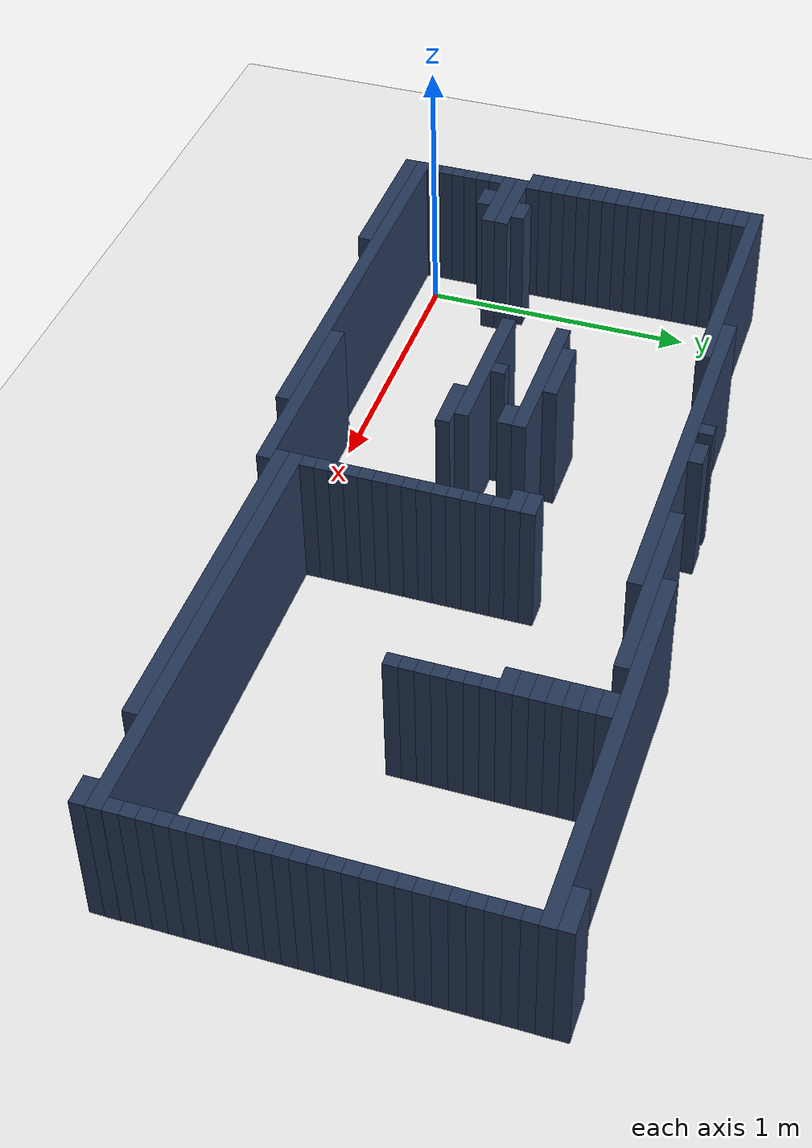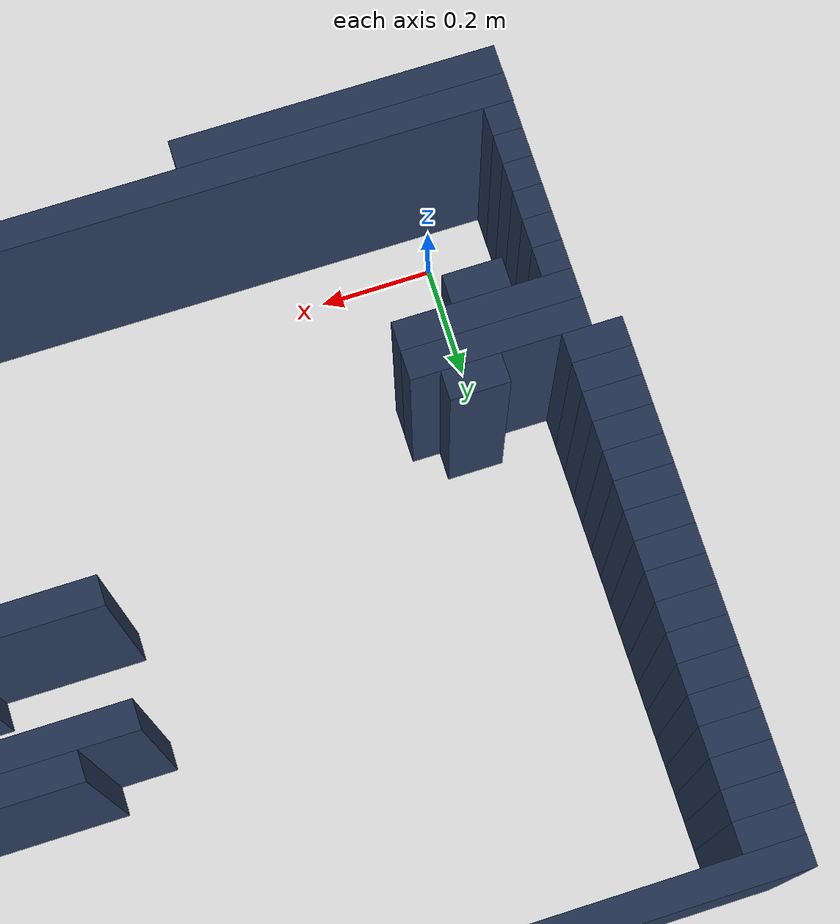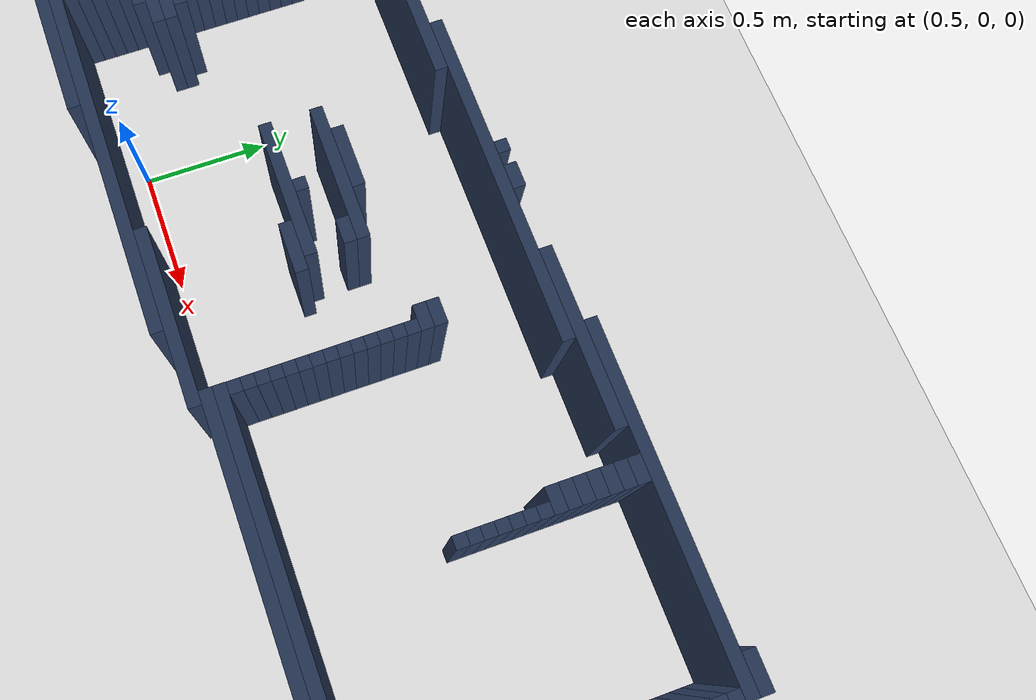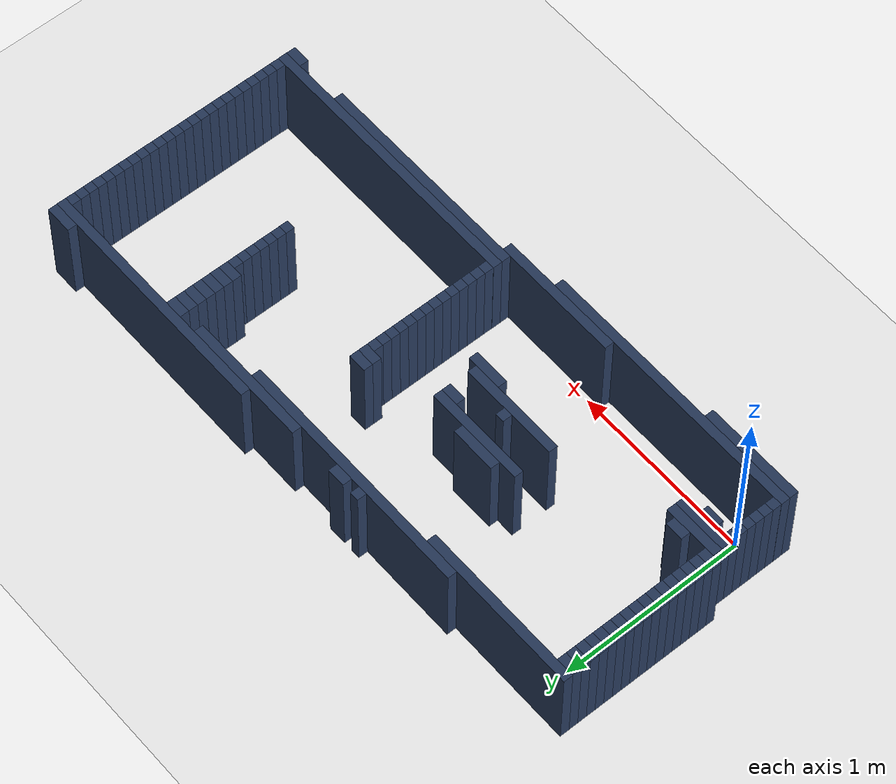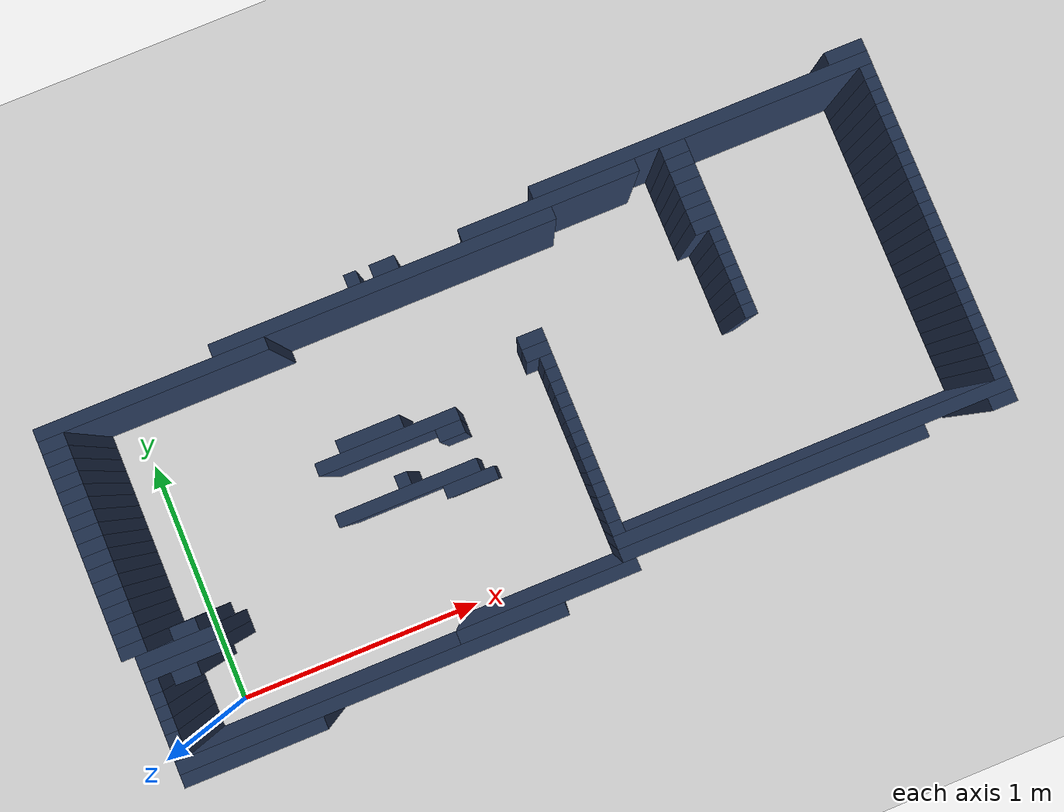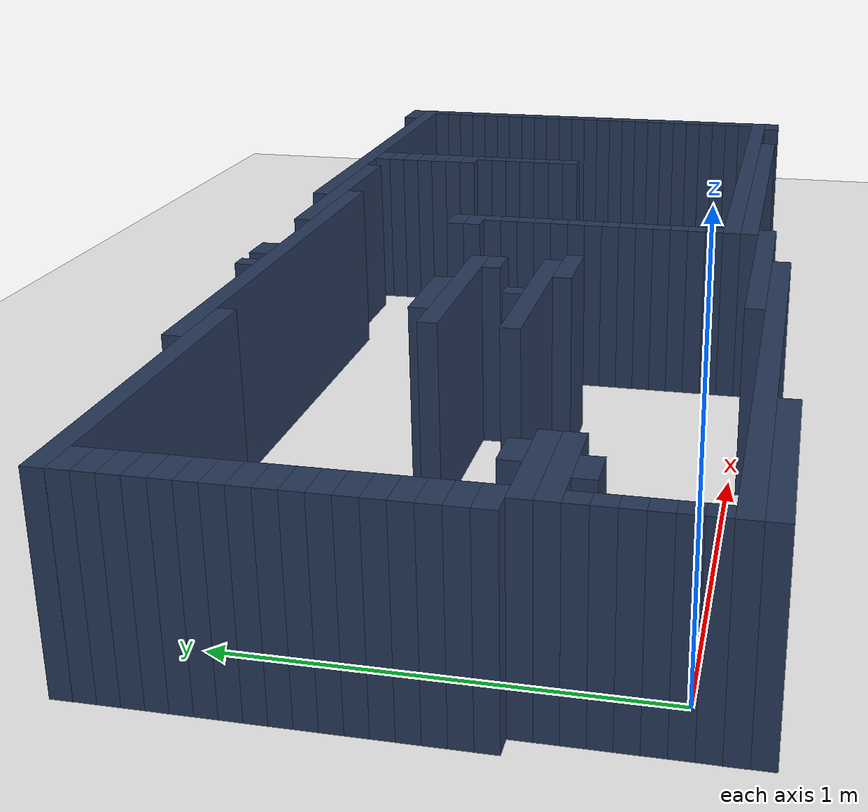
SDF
<?xml version="1.0"?>
<sdf version="1.8">
  <world name="good_map">
    <!-- pinky_gz_sim/worlds/good_map.world 복사본(inwoong/map_to_world.py가 maps/good3.yaml로 만든 실제 방 벽). 물리 step만 1ms -> 4ms: /clock이 초당 1000번 -> 250번으로 줄어 시계를 받는 모든 노드가 가벼워진다. -->
    <plugin filename="gz-sim-physics-system" name="gz::sim::systems::Physics"/>
    <plugin filename="gz-sim-user-commands-system" name="gz::sim::systems::UserCommands"/>
    <plugin filename="gz-sim-scene-broadcaster-system" name="gz::sim::systems::SceneBroadcaster"/>
    <plugin filename="gz-sim-sensors-system" name="gz::sim::systems::Sensors">
      <render_engine>ogre2</render_engine>
    </plugin>
    <plugin filename="gz-sim-imu-system" name="gz::sim::systems::Imu"/>

    <light type="directional" name="sun">
      <cast_shadows>false</cast_shadows>
      <pose>0 0 5 0 0 0</pose>
      <diffuse>1 1 1 1</diffuse>
      <specular>0.3 0.3 0.3 1</specular>
      <direction>-0.3 0.3 -0.9</direction>
    </light>

    <model name="ground_plane">
      <static>true</static>
      <link name="link">
        <collision name="collision">
          <geometry><plane><normal>0 0 1</normal><size>100 100</size></plane></geometry>
        </collision>
        <visual name="visual">
          <geometry><plane><normal>0 0 1</normal><size>100 100</size></plane></geometry>
          <material>
            <ambient>0.95 0.95 0.95 1</ambient>
            <diffuse>0.95 0.95 0.95 1</diffuse>
          </material>
        </visual>
      </link>
    </model>

    <model name="map_walls">
      <static>true</static>
      <link name="wall_0">
        <pose>3.0580 1.4040 0.2500 0 0 0</pose>
        <collision name="collision">
          <geometry>
            <box><size>0.1501 0.0500 0.5000</size></box>
          </geometry>
        </collision>
        <visual name="visual">
          <geometry>
            <box><size>0.1501 0.0500 0.5000</size></box>
          </geometry>
          <material>
            <ambient>0.15 0.22 0.35 1</ambient>
            <diffuse>0.15 0.22 0.35 1</diffuse>
          </material>
        </visual>
      </link>
      <link name="wall_1">
        <pose>2.4580 1.3540 0.2500 0 0 0</pose>
        <collision name="collision">
          <geometry>
            <box><size>1.3513 0.0500 0.5000</size></box>
          </geometry>
        </collision>
        <visual name="visual">
          <geometry>
            <box><size>1.3513 0.0500 0.5000</size></box>
          </geometry>
          <material>
            <ambient>0.15 0.22 0.35 1</ambient>
            <diffuse>0.15 0.22 0.35 1</diffuse>
          </material>
        </visual>
      </link>
      <link name="wall_2">
        <pose>1.0580 1.3040 0.2500 0 0 0</pose>
        <collision name="collision">
          <geometry>
            <box><size>0.0500 0.0500 0.5000</size></box>
          </geometry>
        </collision>
        <visual name="visual">
          <geometry>
            <box><size>0.0500 0.0500 0.5000</size></box>
          </geometry>
          <material>
            <ambient>0.15 0.22 0.35 1</ambient>
            <diffuse>0.15 0.22 0.35 1</diffuse>
          </material>
        </visual>
      </link>
      <link name="wall_3">
        <pose>1.1830 1.3040 0.2500 0 0 0</pose>
        <collision name="collision">
          <geometry>
            <box><size>0.1001 0.0500 0.5000</size></box>
          </geometry>
        </collision>
        <visual name="visual">
          <geometry>
            <box><size>0.1001 0.0500 0.5000</size></box>
          </geometry>
          <material>
            <ambient>0.15 0.22 0.35 1</ambient>
            <diffuse>0.15 0.22 0.35 1</diffuse>
          </material>
        </visual>
      </link>
      <link name="wall_4">
        <pose>1.8330 1.3040 0.2500 0 0 0</pose>
        <collision name="collision">
          <geometry>
            <box><size>0.7007 0.0500 0.5000</size></box>
          </geometry>
        </collision>
        <visual name="visual">
          <geometry>
            <box><size>0.7007 0.0500 0.5000</size></box>
          </geometry>
          <material>
            <ambient>0.15 0.22 0.35 1</ambient>
            <diffuse>0.15 0.22 0.35 1</diffuse>
          </material>
        </visual>
      </link>
      <link name="wall_5">
        <pose>2.3330 1.3040 0.2500 0 0 0</pose>
        <collision name="collision">
          <geometry>
            <box><size>0.1001 0.0500 0.5000</size></box>
          </geometry>
        </collision>
        <visual name="visual">
          <geometry>
            <box><size>0.1001 0.0500 0.5000</size></box>
          </geometry>
          <material>
            <ambient>0.15 0.22 0.35 1</ambient>
            <diffuse>0.15 0.22 0.35 1</diffuse>
          </material>
        </visual>
      </link>
      <link name="wall_6">
        <pose>3.1080 1.3040 0.2500 0 0 0</pose>
        <collision name="collision">
          <geometry>
            <box><size>0.0500 0.0500 0.5000</size></box>
          </geometry>
        </collision>
        <visual name="visual">
          <geometry>
            <box><size>0.0500 0.0500 0.5000</size></box>
          </geometry>
          <material>
            <ambient>0.15 0.22 0.35 1</ambient>
            <diffuse>0.15 0.22 0.35 1</diffuse>
          </material>
        </visual>
      </link>
      <link name="wall_7">
        <pose>1.1580 1.2540 0.2500 0 0 0</pose>
        <collision name="collision">
          <geometry>
            <box><size>1.3513 0.0500 0.5000</size></box>
          </geometry>
        </collision>
        <visual name="visual">
          <geometry>
            <box><size>1.3513 0.0500 0.5000</size></box>
          </geometry>
          <material>
            <ambient>0.15 0.22 0.35 1</ambient>
            <diffuse>0.15 0.22 0.35 1</diffuse>
          </material>
        </visual>
      </link>
      <link name="wall_8">
        <pose>2.3330 1.2540 0.2500 0 0 0</pose>
        <collision name="collision">
          <geometry>
            <box><size>0.1001 0.0500 0.5000</size></box>
          </geometry>
        </collision>
        <visual name="visual">
          <geometry>
            <box><size>0.1001 0.0500 0.5000</size></box>
          </geometry>
          <material>
            <ambient>0.15 0.22 0.35 1</ambient>
            <diffuse>0.15 0.22 0.35 1</diffuse>
          </material>
        </visual>
      </link>
      <link name="wall_9">
        <pose>3.1080 1.2540 0.2500 0 0 0</pose>
        <collision name="collision">
          <geometry>
            <box><size>0.0500 0.0500 0.5000</size></box>
          </geometry>
        </collision>
        <visual name="visual">
          <geometry>
            <box><size>0.0500 0.0500 0.5000</size></box>
          </geometry>
          <material>
            <ambient>0.15 0.22 0.35 1</ambient>
            <diffuse>0.15 0.22 0.35 1</diffuse>
          </material>
        </visual>
      </link>
      <link name="wall_10">
        <pose>0.2330 1.2040 0.2500 0 0 0</pose>
        <collision name="collision">
          <geometry>
            <box><size>0.9009 0.0500 0.5000</size></box>
          </geometry>
        </collision>
        <visual name="visual">
          <geometry>
            <box><size>0.9009 0.0500 0.5000</size></box>
          </geometry>
          <material>
            <ambient>0.15 0.22 0.35 1</ambient>
            <diffuse>0.15 0.22 0.35 1</diffuse>
          </material>
        </visual>
      </link>
      <link name="wall_11">
        <pose>2.3330 1.2040 0.2500 0 0 0</pose>
        <collision name="collision">
          <geometry>
            <box><size>0.1001 0.0500 0.5000</size></box>
          </geometry>
        </collision>
        <visual name="visual">
          <geometry>
            <box><size>0.1001 0.0500 0.5000</size></box>
          </geometry>
          <material>
            <ambient>0.15 0.22 0.35 1</ambient>
            <diffuse>0.15 0.22 0.35 1</diffuse>
          </material>
        </visual>
      </link>
      <link name="wall_12">
        <pose>3.1080 1.2040 0.2500 0 0 0</pose>
        <collision name="collision">
          <geometry>
            <box><size>0.0500 0.0500 0.5000</size></box>
          </geometry>
        </collision>
        <visual name="visual">
          <geometry>
            <box><size>0.0500 0.0500 0.5000</size></box>
          </geometry>
          <material>
            <ambient>0.15 0.22 0.35 1</ambient>
            <diffuse>0.15 0.22 0.35 1</diffuse>
          </material>
        </visual>
      </link>
      <link name="wall_13">
        <pose>-0.1670 1.1540 0.2500 0 0 0</pose>
        <collision name="collision">
          <geometry>
            <box><size>0.1001 0.0500 0.5000</size></box>
          </geometry>
        </collision>
        <visual name="visual">
          <geometry>
            <box><size>0.1001 0.0500 0.5000</size></box>
          </geometry>
          <material>
            <ambient>0.15 0.22 0.35 1</ambient>
            <diffuse>0.15 0.22 0.35 1</diffuse>
          </material>
        </visual>
      </link>
      <link name="wall_14">
        <pose>2.3330 1.1540 0.2500 0 0 0</pose>
        <collision name="collision">
          <geometry>
            <box><size>0.1001 0.0500 0.5000</size></box>
          </geometry>
        </collision>
        <visual name="visual">
          <geometry>
            <box><size>0.1001 0.0500 0.5000</size></box>
          </geometry>
          <material>
            <ambient>0.15 0.22 0.35 1</ambient>
            <diffuse>0.15 0.22 0.35 1</diffuse>
          </material>
        </visual>
      </link>
      <link name="wall_15">
        <pose>3.1080 1.1540 0.2500 0 0 0</pose>
        <collision name="collision">
          <geometry>
            <box><size>0.0500 0.0500 0.5000</size></box>
          </geometry>
        </collision>
        <visual name="visual">
          <geometry>
            <box><size>0.0500 0.0500 0.5000</size></box>
          </geometry>
          <material>
            <ambient>0.15 0.22 0.35 1</ambient>
            <diffuse>0.15 0.22 0.35 1</diffuse>
          </material>
        </visual>
      </link>
      <link name="wall_16">
        <pose>-0.1670 1.1040 0.2500 0 0 0</pose>
        <collision name="collision">
          <geometry>
            <box><size>0.1001 0.0500 0.5000</size></box>
          </geometry>
        </collision>
        <visual name="visual">
          <geometry>
            <box><size>0.1001 0.0500 0.5000</size></box>
          </geometry>
          <material>
            <ambient>0.15 0.22 0.35 1</ambient>
            <diffuse>0.15 0.22 0.35 1</diffuse>
          </material>
        </visual>
      </link>
      <link name="wall_17">
        <pose>2.3330 1.1040 0.2500 0 0 0</pose>
        <collision name="collision">
          <geometry>
            <box><size>0.1001 0.0500 0.5000</size></box>
          </geometry>
        </collision>
        <visual name="visual">
          <geometry>
            <box><size>0.1001 0.0500 0.5000</size></box>
          </geometry>
          <material>
            <ambient>0.15 0.22 0.35 1</ambient>
            <diffuse>0.15 0.22 0.35 1</diffuse>
          </material>
        </visual>
      </link>
      <link name="wall_18">
        <pose>3.1080 1.1040 0.2500 0 0 0</pose>
        <collision name="collision">
          <geometry>
            <box><size>0.0500 0.0500 0.5000</size></box>
          </geometry>
        </collision>
        <visual name="visual">
          <geometry>
            <box><size>0.0500 0.0500 0.5000</size></box>
          </geometry>
          <material>
            <ambient>0.15 0.22 0.35 1</ambient>
            <diffuse>0.15 0.22 0.35 1</diffuse>
          </material>
        </visual>
      </link>
      <link name="wall_19">
        <pose>-0.1670 1.0540 0.2500 0 0 0</pose>
        <collision name="collision">
          <geometry>
            <box><size>0.1001 0.0500 0.5000</size></box>
          </geometry>
        </collision>
        <visual name="visual">
          <geometry>
            <box><size>0.1001 0.0500 0.5000</size></box>
          </geometry>
          <material>
            <ambient>0.15 0.22 0.35 1</ambient>
            <diffuse>0.15 0.22 0.35 1</diffuse>
          </material>
        </visual>
      </link>
      <link name="wall_20">
        <pose>2.3330 1.0540 0.2500 0 0 0</pose>
        <collision name="collision">
          <geometry>
            <box><size>0.1001 0.0500 0.5000</size></box>
          </geometry>
        </collision>
        <visual name="visual">
          <geometry>
            <box><size>0.1001 0.0500 0.5000</size></box>
          </geometry>
          <material>
            <ambient>0.15 0.22 0.35 1</ambient>
            <diffuse>0.15 0.22 0.35 1</diffuse>
          </material>
        </visual>
      </link>
      <link name="wall_21">
        <pose>3.1080 1.0540 0.2500 0 0 0</pose>
        <collision name="collision">
          <geometry>
            <box><size>0.0500 0.0500 0.5000</size></box>
          </geometry>
        </collision>
        <visual name="visual">
          <geometry>
            <box><size>0.0500 0.0500 0.5000</size></box>
          </geometry>
          <material>
            <ambient>0.15 0.22 0.35 1</ambient>
            <diffuse>0.15 0.22 0.35 1</diffuse>
          </material>
        </visual>
      </link>
      <link name="wall_22">
        <pose>-0.1670 1.0040 0.2500 0 0 0</pose>
        <collision name="collision">
          <geometry>
            <box><size>0.1001 0.0500 0.5000</size></box>
          </geometry>
        </collision>
        <visual name="visual">
          <geometry>
            <box><size>0.1001 0.0500 0.5000</size></box>
          </geometry>
          <material>
            <ambient>0.15 0.22 0.35 1</ambient>
            <diffuse>0.15 0.22 0.35 1</diffuse>
          </material>
        </visual>
      </link>
      <link name="wall_23">
        <pose>2.3330 1.0040 0.2500 0 0 0</pose>
        <collision name="collision">
          <geometry>
            <box><size>0.1001 0.0500 0.5000</size></box>
          </geometry>
        </collision>
        <visual name="visual">
          <geometry>
            <box><size>0.1001 0.0500 0.5000</size></box>
          </geometry>
          <material>
            <ambient>0.15 0.22 0.35 1</ambient>
            <diffuse>0.15 0.22 0.35 1</diffuse>
          </material>
        </visual>
      </link>
      <link name="wall_24">
        <pose>3.1080 1.0040 0.2500 0 0 0</pose>
        <collision name="collision">
          <geometry>
            <box><size>0.0500 0.0500 0.5000</size></box>
          </geometry>
        </collision>
        <visual name="visual">
          <geometry>
            <box><size>0.0500 0.0500 0.5000</size></box>
          </geometry>
          <material>
            <ambient>0.15 0.22 0.35 1</ambient>
            <diffuse>0.15 0.22 0.35 1</diffuse>
          </material>
        </visual>
      </link>
      <link name="wall_25">
        <pose>-0.1670 0.9540 0.2500 0 0 0</pose>
        <collision name="collision">
          <geometry>
            <box><size>0.1001 0.0500 0.5000</size></box>
          </geometry>
        </collision>
        <visual name="visual">
          <geometry>
            <box><size>0.1001 0.0500 0.5000</size></box>
          </geometry>
          <material>
            <ambient>0.15 0.22 0.35 1</ambient>
            <diffuse>0.15 0.22 0.35 1</diffuse>
          </material>
        </visual>
      </link>
      <link name="wall_26">
        <pose>2.3580 0.9540 0.2500 0 0 0</pose>
        <collision name="collision">
          <geometry>
            <box><size>0.0500 0.0500 0.5000</size></box>
          </geometry>
        </collision>
        <visual name="visual">
          <geometry>
            <box><size>0.0500 0.0500 0.5000</size></box>
          </geometry>
          <material>
            <ambient>0.15 0.22 0.35 1</ambient>
            <diffuse>0.15 0.22 0.35 1</diffuse>
          </material>
        </visual>
      </link>
      <link name="wall_27">
        <pose>3.1080 0.9540 0.2500 0 0 0</pose>
        <collision name="collision">
          <geometry>
            <box><size>0.0500 0.0500 0.5000</size></box>
          </geometry>
        </collision>
        <visual name="visual">
          <geometry>
            <box><size>0.0500 0.0500 0.5000</size></box>
          </geometry>
          <material>
            <ambient>0.15 0.22 0.35 1</ambient>
            <diffuse>0.15 0.22 0.35 1</diffuse>
          </material>
        </visual>
      </link>
      <link name="wall_28">
        <pose>-0.1670 0.9040 0.2500 0 0 0</pose>
        <collision name="collision">
          <geometry>
            <box><size>0.1001 0.0500 0.5000</size></box>
          </geometry>
        </collision>
        <visual name="visual">
          <geometry>
            <box><size>0.1001 0.0500 0.5000</size></box>
          </geometry>
          <material>
            <ambient>0.15 0.22 0.35 1</ambient>
            <diffuse>0.15 0.22 0.35 1</diffuse>
          </material>
        </visual>
      </link>
      <link name="wall_29">
        <pose>2.3580 0.9040 0.2500 0 0 0</pose>
        <collision name="collision">
          <geometry>
            <box><size>0.0500 0.0500 0.5000</size></box>
          </geometry>
        </collision>
        <visual name="visual">
          <geometry>
            <box><size>0.0500 0.0500 0.5000</size></box>
          </geometry>
          <material>
            <ambient>0.15 0.22 0.35 1</ambient>
            <diffuse>0.15 0.22 0.35 1</diffuse>
          </material>
        </visual>
      </link>
      <link name="wall_30">
        <pose>3.1080 0.9040 0.2500 0 0 0</pose>
        <collision name="collision">
          <geometry>
            <box><size>0.0500 0.0500 0.5000</size></box>
          </geometry>
        </collision>
        <visual name="visual">
          <geometry>
            <box><size>0.0500 0.0500 0.5000</size></box>
          </geometry>
          <material>
            <ambient>0.15 0.22 0.35 1</ambient>
            <diffuse>0.15 0.22 0.35 1</diffuse>
          </material>
        </visual>
      </link>
      <link name="wall_31">
        <pose>-0.1670 0.8540 0.2500 0 0 0</pose>
        <collision name="collision">
          <geometry>
            <box><size>0.1001 0.0500 0.5000</size></box>
          </geometry>
        </collision>
        <visual name="visual">
          <geometry>
            <box><size>0.1001 0.0500 0.5000</size></box>
          </geometry>
          <material>
            <ambient>0.15 0.22 0.35 1</ambient>
            <diffuse>0.15 0.22 0.35 1</diffuse>
          </material>
        </visual>
      </link>
      <link name="wall_32">
        <pose>1.5830 0.8540 0.2500 0 0 0</pose>
        <collision name="collision">
          <geometry>
            <box><size>0.1001 0.0500 0.5000</size></box>
          </geometry>
        </collision>
        <visual name="visual">
          <geometry>
            <box><size>0.1001 0.0500 0.5000</size></box>
          </geometry>
          <material>
            <ambient>0.15 0.22 0.35 1</ambient>
            <diffuse>0.15 0.22 0.35 1</diffuse>
          </material>
        </visual>
      </link>
      <link name="wall_33">
        <pose>2.3580 0.8540 0.2500 0 0 0</pose>
        <collision name="collision">
          <geometry>
            <box><size>0.0500 0.0500 0.5000</size></box>
          </geometry>
        </collision>
        <visual name="visual">
          <geometry>
            <box><size>0.0500 0.0500 0.5000</size></box>
          </geometry>
          <material>
            <ambient>0.15 0.22 0.35 1</ambient>
            <diffuse>0.15 0.22 0.35 1</diffuse>
          </material>
        </visual>
      </link>
      <link name="wall_34">
        <pose>3.1080 0.8540 0.2500 0 0 0</pose>
        <collision name="collision">
          <geometry>
            <box><size>0.0500 0.0500 0.5000</size></box>
          </geometry>
        </collision>
        <visual name="visual">
          <geometry>
            <box><size>0.0500 0.0500 0.5000</size></box>
          </geometry>
          <material>
            <ambient>0.15 0.22 0.35 1</ambient>
            <diffuse>0.15 0.22 0.35 1</diffuse>
          </material>
        </visual>
      </link>
      <link name="wall_35">
        <pose>-0.1670 0.8040 0.2500 0 0 0</pose>
        <collision name="collision">
          <geometry>
            <box><size>0.1001 0.0500 0.5000</size></box>
          </geometry>
        </collision>
        <visual name="visual">
          <geometry>
            <box><size>0.1001 0.0500 0.5000</size></box>
          </geometry>
          <material>
            <ambient>0.15 0.22 0.35 1</ambient>
            <diffuse>0.15 0.22 0.35 1</diffuse>
          </material>
        </visual>
      </link>
      <link name="wall_36">
        <pose>1.5830 0.8040 0.2500 0 0 0</pose>
        <collision name="collision">
          <geometry>
            <box><size>0.1001 0.0500 0.5000</size></box>
          </geometry>
        </collision>
        <visual name="visual">
          <geometry>
            <box><size>0.1001 0.0500 0.5000</size></box>
          </geometry>
          <material>
            <ambient>0.15 0.22 0.35 1</ambient>
            <diffuse>0.15 0.22 0.35 1</diffuse>
          </material>
        </visual>
      </link>
      <link name="wall_37">
        <pose>2.3580 0.8040 0.2500 0 0 0</pose>
        <collision name="collision">
          <geometry>
            <box><size>0.0500 0.0500 0.5000</size></box>
          </geometry>
        </collision>
        <visual name="visual">
          <geometry>
            <box><size>0.0500 0.0500 0.5000</size></box>
          </geometry>
          <material>
            <ambient>0.15 0.22 0.35 1</ambient>
            <diffuse>0.15 0.22 0.35 1</diffuse>
          </material>
        </visual>
      </link>
      <link name="wall_38">
        <pose>3.1080 0.8040 0.2500 0 0 0</pose>
        <collision name="collision">
          <geometry>
            <box><size>0.0500 0.0500 0.5000</size></box>
          </geometry>
        </collision>
        <visual name="visual">
          <geometry>
            <box><size>0.0500 0.0500 0.5000</size></box>
          </geometry>
          <material>
            <ambient>0.15 0.22 0.35 1</ambient>
            <diffuse>0.15 0.22 0.35 1</diffuse>
          </material>
        </visual>
      </link>
      <link name="wall_39">
        <pose>-0.1670 0.7540 0.2500 0 0 0</pose>
        <collision name="collision">
          <geometry>
            <box><size>0.1001 0.0500 0.5000</size></box>
          </geometry>
        </collision>
        <visual name="visual">
          <geometry>
            <box><size>0.1001 0.0500 0.5000</size></box>
          </geometry>
          <material>
            <ambient>0.15 0.22 0.35 1</ambient>
            <diffuse>0.15 0.22 0.35 1</diffuse>
          </material>
        </visual>
      </link>
      <link name="wall_40">
        <pose>0.9080 0.7540 0.2500 0 0 0</pose>
        <collision name="collision">
          <geometry>
            <box><size>0.2503 0.0500 0.5000</size></box>
          </geometry>
        </collision>
        <visual name="visual">
          <geometry>
            <box><size>0.2503 0.0500 0.5000</size></box>
          </geometry>
          <material>
            <ambient>0.15 0.22 0.35 1</ambient>
            <diffuse>0.15 0.22 0.35 1</diffuse>
          </material>
        </visual>
      </link>
      <link name="wall_41">
        <pose>1.6080 0.7540 0.2500 0 0 0</pose>
        <collision name="collision">
          <geometry>
            <box><size>0.0500 0.0500 0.5000</size></box>
          </geometry>
        </collision>
        <visual name="visual">
          <geometry>
            <box><size>0.0500 0.0500 0.5000</size></box>
          </geometry>
          <material>
            <ambient>0.15 0.22 0.35 1</ambient>
            <diffuse>0.15 0.22 0.35 1</diffuse>
          </material>
        </visual>
      </link>
      <link name="wall_42">
        <pose>2.3580 0.7540 0.2500 0 0 0</pose>
        <collision name="collision">
          <geometry>
            <box><size>0.0500 0.0500 0.5000</size></box>
          </geometry>
        </collision>
        <visual name="visual">
          <geometry>
            <box><size>0.0500 0.0500 0.5000</size></box>
          </geometry>
          <material>
            <ambient>0.15 0.22 0.35 1</ambient>
            <diffuse>0.15 0.22 0.35 1</diffuse>
          </material>
        </visual>
      </link>
      <link name="wall_43">
        <pose>3.1080 0.7540 0.2500 0 0 0</pose>
        <collision name="collision">
          <geometry>
            <box><size>0.0500 0.0500 0.5000</size></box>
          </geometry>
        </collision>
        <visual name="visual">
          <geometry>
            <box><size>0.0500 0.0500 0.5000</size></box>
          </geometry>
          <material>
            <ambient>0.15 0.22 0.35 1</ambient>
            <diffuse>0.15 0.22 0.35 1</diffuse>
          </material>
        </visual>
      </link>
      <link name="wall_44">
        <pose>-0.1670 0.7040 0.2500 0 0 0</pose>
        <collision name="collision">
          <geometry>
            <box><size>0.1001 0.0500 0.5000</size></box>
          </geometry>
        </collision>
        <visual name="visual">
          <geometry>
            <box><size>0.1001 0.0500 0.5000</size></box>
          </geometry>
          <material>
            <ambient>0.15 0.22 0.35 1</ambient>
            <diffuse>0.15 0.22 0.35 1</diffuse>
          </material>
        </visual>
      </link>
      <link name="wall_45">
        <pose>0.9580 0.7040 0.2500 0 0 0</pose>
        <collision name="collision">
          <geometry>
            <box><size>0.5505 0.0500 0.5000</size></box>
          </geometry>
        </collision>
        <visual name="visual">
          <geometry>
            <box><size>0.5505 0.0500 0.5000</size></box>
          </geometry>
          <material>
            <ambient>0.15 0.22 0.35 1</ambient>
            <diffuse>0.15 0.22 0.35 1</diffuse>
          </material>
        </visual>
      </link>
      <link name="wall_46">
        <pose>1.6080 0.7040 0.2500 0 0 0</pose>
        <collision name="collision">
          <geometry>
            <box><size>0.0500 0.0500 0.5000</size></box>
          </geometry>
        </collision>
        <visual name="visual">
          <geometry>
            <box><size>0.0500 0.0500 0.5000</size></box>
          </geometry>
          <material>
            <ambient>0.15 0.22 0.35 1</ambient>
            <diffuse>0.15 0.22 0.35 1</diffuse>
          </material>
        </visual>
      </link>
      <link name="wall_47">
        <pose>2.3580 0.7040 0.2500 0 0 0</pose>
        <collision name="collision">
          <geometry>
            <box><size>0.0500 0.0500 0.5000</size></box>
          </geometry>
        </collision>
        <visual name="visual">
          <geometry>
            <box><size>0.0500 0.0500 0.5000</size></box>
          </geometry>
          <material>
            <ambient>0.15 0.22 0.35 1</ambient>
            <diffuse>0.15 0.22 0.35 1</diffuse>
          </material>
        </visual>
      </link>
      <link name="wall_48">
        <pose>3.1080 0.7040 0.2500 0 0 0</pose>
        <collision name="collision">
          <geometry>
            <box><size>0.0500 0.0500 0.5000</size></box>
          </geometry>
        </collision>
        <visual name="visual">
          <geometry>
            <box><size>0.0500 0.0500 0.5000</size></box>
          </geometry>
          <material>
            <ambient>0.15 0.22 0.35 1</ambient>
            <diffuse>0.15 0.22 0.35 1</diffuse>
          </material>
        </visual>
      </link>
      <link name="wall_49">
        <pose>-0.1670 0.6540 0.2500 0 0 0</pose>
        <collision name="collision">
          <geometry>
            <box><size>0.1001 0.0500 0.5000</size></box>
          </geometry>
        </collision>
        <visual name="visual">
          <geometry>
            <box><size>0.1001 0.0500 0.5000</size></box>
          </geometry>
          <material>
            <ambient>0.15 0.22 0.35 1</ambient>
            <diffuse>0.15 0.22 0.35 1</diffuse>
          </material>
        </visual>
      </link>
      <link name="wall_50">
        <pose>1.1830 0.6540 0.2500 0 0 0</pose>
        <collision name="collision">
          <geometry>
            <box><size>0.1001 0.0500 0.5000</size></box>
          </geometry>
        </collision>
        <visual name="visual">
          <geometry>
            <box><size>0.1001 0.0500 0.5000</size></box>
          </geometry>
          <material>
            <ambient>0.15 0.22 0.35 1</ambient>
            <diffuse>0.15 0.22 0.35 1</diffuse>
          </material>
        </visual>
      </link>
      <link name="wall_51">
        <pose>1.6080 0.6540 0.2500 0 0 0</pose>
        <collision name="collision">
          <geometry>
            <box><size>0.0500 0.0500 0.5000</size></box>
          </geometry>
        </collision>
        <visual name="visual">
          <geometry>
            <box><size>0.0500 0.0500 0.5000</size></box>
          </geometry>
          <material>
            <ambient>0.15 0.22 0.35 1</ambient>
            <diffuse>0.15 0.22 0.35 1</diffuse>
          </material>
        </visual>
      </link>
      <link name="wall_52">
        <pose>2.3580 0.6540 0.2500 0 0 0</pose>
        <collision name="collision">
          <geometry>
            <box><size>0.0500 0.0500 0.5000</size></box>
          </geometry>
        </collision>
        <visual name="visual">
          <geometry>
            <box><size>0.0500 0.0500 0.5000</size></box>
          </geometry>
          <material>
            <ambient>0.15 0.22 0.35 1</ambient>
            <diffuse>0.15 0.22 0.35 1</diffuse>
          </material>
        </visual>
      </link>
      <link name="wall_53">
        <pose>3.1080 0.6540 0.2500 0 0 0</pose>
        <collision name="collision">
          <geometry>
            <box><size>0.0500 0.0500 0.5000</size></box>
          </geometry>
        </collision>
        <visual name="visual">
          <geometry>
            <box><size>0.0500 0.0500 0.5000</size></box>
          </geometry>
          <material>
            <ambient>0.15 0.22 0.35 1</ambient>
            <diffuse>0.15 0.22 0.35 1</diffuse>
          </material>
        </visual>
      </link>
      <link name="wall_54">
        <pose>-0.1670 0.6040 0.2500 0 0 0</pose>
        <collision name="collision">
          <geometry>
            <box><size>0.1001 0.0500 0.5000</size></box>
          </geometry>
        </collision>
        <visual name="visual">
          <geometry>
            <box><size>0.1001 0.0500 0.5000</size></box>
          </geometry>
          <material>
            <ambient>0.15 0.22 0.35 1</ambient>
            <diffuse>0.15 0.22 0.35 1</diffuse>
          </material>
        </visual>
      </link>
      <link name="wall_55">
        <pose>1.6080 0.6040 0.2500 0 0 0</pose>
        <collision name="collision">
          <geometry>
            <box><size>0.0500 0.0500 0.5000</size></box>
          </geometry>
        </collision>
        <visual name="visual">
          <geometry>
            <box><size>0.0500 0.0500 0.5000</size></box>
          </geometry>
          <material>
            <ambient>0.15 0.22 0.35 1</ambient>
            <diffuse>0.15 0.22 0.35 1</diffuse>
          </material>
        </visual>
      </link>
      <link name="wall_56">
        <pose>3.1080 0.6040 0.2500 0 0 0</pose>
        <collision name="collision">
          <geometry>
            <box><size>0.0500 0.0500 0.5000</size></box>
          </geometry>
        </collision>
        <visual name="visual">
          <geometry>
            <box><size>0.0500 0.0500 0.5000</size></box>
          </geometry>
          <material>
            <ambient>0.15 0.22 0.35 1</ambient>
            <diffuse>0.15 0.22 0.35 1</diffuse>
          </material>
        </visual>
      </link>
      <link name="wall_57">
        <pose>-0.1670 0.5540 0.2500 0 0 0</pose>
        <collision name="collision">
          <geometry>
            <box><size>0.1001 0.0500 0.5000</size></box>
          </geometry>
        </collision>
        <visual name="visual">
          <geometry>
            <box><size>0.1001 0.0500 0.5000</size></box>
          </geometry>
          <material>
            <ambient>0.15 0.22 0.35 1</ambient>
            <diffuse>0.15 0.22 0.35 1</diffuse>
          </material>
        </visual>
      </link>
      <link name="wall_58">
        <pose>0.9580 0.5540 0.2500 0 0 0</pose>
        <collision name="collision">
          <geometry>
            <box><size>0.0501 0.0500 0.5000</size></box>
          </geometry>
        </collision>
        <visual name="visual">
          <geometry>
            <box><size>0.0501 0.0500 0.5000</size></box>
          </geometry>
          <material>
            <ambient>0.15 0.22 0.35 1</ambient>
            <diffuse>0.15 0.22 0.35 1</diffuse>
          </material>
        </visual>
      </link>
      <link name="wall_59">
        <pose>1.6080 0.5540 0.2500 0 0 0</pose>
        <collision name="collision">
          <geometry>
            <box><size>0.0500 0.0500 0.5000</size></box>
          </geometry>
        </collision>
        <visual name="visual">
          <geometry>
            <box><size>0.0500 0.0500 0.5000</size></box>
          </geometry>
          <material>
            <ambient>0.15 0.22 0.35 1</ambient>
            <diffuse>0.15 0.22 0.35 1</diffuse>
          </material>
        </visual>
      </link>
      <link name="wall_60">
        <pose>3.1080 0.5540 0.2500 0 0 0</pose>
        <collision name="collision">
          <geometry>
            <box><size>0.0500 0.0500 0.5000</size></box>
          </geometry>
        </collision>
        <visual name="visual">
          <geometry>
            <box><size>0.0500 0.0500 0.5000</size></box>
          </geometry>
          <material>
            <ambient>0.15 0.22 0.35 1</ambient>
            <diffuse>0.15 0.22 0.35 1</diffuse>
          </material>
        </visual>
      </link>
      <link name="wall_61">
        <pose>-0.1670 0.5040 0.2500 0 0 0</pose>
        <collision name="collision">
          <geometry>
            <box><size>0.1001 0.0500 0.5000</size></box>
          </geometry>
        </collision>
        <visual name="visual">
          <geometry>
            <box><size>0.1001 0.0500 0.5000</size></box>
          </geometry>
          <material>
            <ambient>0.15 0.22 0.35 1</ambient>
            <diffuse>0.15 0.22 0.35 1</diffuse>
          </material>
        </visual>
      </link>
      <link name="wall_62">
        <pose>0.9580 0.5040 0.2500 0 0 0</pose>
        <collision name="collision">
          <geometry>
            <box><size>0.5505 0.0500 0.5000</size></box>
          </geometry>
        </collision>
        <visual name="visual">
          <geometry>
            <box><size>0.5505 0.0500 0.5000</size></box>
          </geometry>
          <material>
            <ambient>0.15 0.22 0.35 1</ambient>
            <diffuse>0.15 0.22 0.35 1</diffuse>
          </material>
        </visual>
      </link>
      <link name="wall_63">
        <pose>1.6080 0.5040 0.2500 0 0 0</pose>
        <collision name="collision">
          <geometry>
            <box><size>0.0500 0.0500 0.5000</size></box>
          </geometry>
        </collision>
        <visual name="visual">
          <geometry>
            <box><size>0.0500 0.0500 0.5000</size></box>
          </geometry>
          <material>
            <ambient>0.15 0.22 0.35 1</ambient>
            <diffuse>0.15 0.22 0.35 1</diffuse>
          </material>
        </visual>
      </link>
      <link name="wall_64">
        <pose>3.1080 0.5040 0.2500 0 0 0</pose>
        <collision name="collision">
          <geometry>
            <box><size>0.0500 0.0500 0.5000</size></box>
          </geometry>
        </collision>
        <visual name="visual">
          <geometry>
            <box><size>0.0500 0.0500 0.5000</size></box>
          </geometry>
          <material>
            <ambient>0.15 0.22 0.35 1</ambient>
            <diffuse>0.15 0.22 0.35 1</diffuse>
          </material>
        </visual>
      </link>
      <link name="wall_65">
        <pose>-0.1670 0.4540 0.2500 0 0 0</pose>
        <collision name="collision">
          <geometry>
            <box><size>0.1001 0.0500 0.5000</size></box>
          </geometry>
        </collision>
        <visual name="visual">
          <geometry>
            <box><size>0.1001 0.0500 0.5000</size></box>
          </geometry>
          <material>
            <ambient>0.15 0.22 0.35 1</ambient>
            <diffuse>0.15 0.22 0.35 1</diffuse>
          </material>
        </visual>
      </link>
      <link name="wall_66">
        <pose>1.1830 0.4540 0.2500 0 0 0</pose>
        <collision name="collision">
          <geometry>
            <box><size>0.2002 0.0500 0.5000</size></box>
          </geometry>
        </collision>
        <visual name="visual">
          <geometry>
            <box><size>0.2002 0.0500 0.5000</size></box>
          </geometry>
          <material>
            <ambient>0.15 0.22 0.35 1</ambient>
            <diffuse>0.15 0.22 0.35 1</diffuse>
          </material>
        </visual>
      </link>
      <link name="wall_67">
        <pose>1.6080 0.4540 0.2500 0 0 0</pose>
        <collision name="collision">
          <geometry>
            <box><size>0.0500 0.0500 0.5000</size></box>
          </geometry>
        </collision>
        <visual name="visual">
          <geometry>
            <box><size>0.0500 0.0500 0.5000</size></box>
          </geometry>
          <material>
            <ambient>0.15 0.22 0.35 1</ambient>
            <diffuse>0.15 0.22 0.35 1</diffuse>
          </material>
        </visual>
      </link>
      <link name="wall_68">
        <pose>3.1080 0.4540 0.2500 0 0 0</pose>
        <collision name="collision">
          <geometry>
            <box><size>0.0500 0.0500 0.5000</size></box>
          </geometry>
        </collision>
        <visual name="visual">
          <geometry>
            <box><size>0.0500 0.0500 0.5000</size></box>
          </geometry>
          <material>
            <ambient>0.15 0.22 0.35 1</ambient>
            <diffuse>0.15 0.22 0.35 1</diffuse>
          </material>
        </visual>
      </link>
      <link name="wall_69">
        <pose>-0.1670 0.4040 0.2500 0 0 0</pose>
        <collision name="collision">
          <geometry>
            <box><size>0.1001 0.0500 0.5000</size></box>
          </geometry>
        </collision>
        <visual name="visual">
          <geometry>
            <box><size>0.1001 0.0500 0.5000</size></box>
          </geometry>
          <material>
            <ambient>0.15 0.22 0.35 1</ambient>
            <diffuse>0.15 0.22 0.35 1</diffuse>
          </material>
        </visual>
      </link>
      <link name="wall_70">
        <pose>1.6080 0.4040 0.2500 0 0 0</pose>
        <collision name="collision">
          <geometry>
            <box><size>0.0500 0.0500 0.5000</size></box>
          </geometry>
        </collision>
        <visual name="visual">
          <geometry>
            <box><size>0.0500 0.0500 0.5000</size></box>
          </geometry>
          <material>
            <ambient>0.15 0.22 0.35 1</ambient>
            <diffuse>0.15 0.22 0.35 1</diffuse>
          </material>
        </visual>
      </link>
      <link name="wall_71">
        <pose>3.1080 0.4040 0.2500 0 0 0</pose>
        <collision name="collision">
          <geometry>
            <box><size>0.0500 0.0500 0.5000</size></box>
          </geometry>
        </collision>
        <visual name="visual">
          <geometry>
            <box><size>0.0500 0.0500 0.5000</size></box>
          </geometry>
          <material>
            <ambient>0.15 0.22 0.35 1</ambient>
            <diffuse>0.15 0.22 0.35 1</diffuse>
          </material>
        </visual>
      </link>
      <link name="wall_72">
        <pose>-0.1670 0.3540 0.2500 0 0 0</pose>
        <collision name="collision">
          <geometry>
            <box><size>0.1001 0.0500 0.5000</size></box>
          </geometry>
        </collision>
        <visual name="visual">
          <geometry>
            <box><size>0.1001 0.0500 0.5000</size></box>
          </geometry>
          <material>
            <ambient>0.15 0.22 0.35 1</ambient>
            <diffuse>0.15 0.22 0.35 1</diffuse>
          </material>
        </visual>
      </link>
      <link name="wall_73">
        <pose>0.0330 0.3540 0.2500 0 0 0</pose>
        <collision name="collision">
          <geometry>
            <box><size>0.1001 0.0500 0.5000</size></box>
          </geometry>
        </collision>
        <visual name="visual">
          <geometry>
            <box><size>0.1001 0.0500 0.5000</size></box>
          </geometry>
          <material>
            <ambient>0.15 0.22 0.35 1</ambient>
            <diffuse>0.15 0.22 0.35 1</diffuse>
          </material>
        </visual>
      </link>
      <link name="wall_74">
        <pose>1.6080 0.3540 0.2500 0 0 0</pose>
        <collision name="collision">
          <geometry>
            <box><size>0.0500 0.0500 0.5000</size></box>
          </geometry>
        </collision>
        <visual name="visual">
          <geometry>
            <box><size>0.0500 0.0500 0.5000</size></box>
          </geometry>
          <material>
            <ambient>0.15 0.22 0.35 1</ambient>
            <diffuse>0.15 0.22 0.35 1</diffuse>
          </material>
        </visual>
      </link>
      <link name="wall_75">
        <pose>3.1080 0.3540 0.2500 0 0 0</pose>
        <collision name="collision">
          <geometry>
            <box><size>0.0500 0.0500 0.5000</size></box>
          </geometry>
        </collision>
        <visual name="visual">
          <geometry>
            <box><size>0.0500 0.0500 0.5000</size></box>
          </geometry>
          <material>
            <ambient>0.15 0.22 0.35 1</ambient>
            <diffuse>0.15 0.22 0.35 1</diffuse>
          </material>
        </visual>
      </link>
      <link name="wall_76">
        <pose>-0.0170 0.3040 0.2500 0 0 0</pose>
        <collision name="collision">
          <geometry>
            <box><size>0.3003 0.0500 0.5000</size></box>
          </geometry>
        </collision>
        <visual name="visual">
          <geometry>
            <box><size>0.3003 0.0500 0.5000</size></box>
          </geometry>
          <material>
            <ambient>0.15 0.22 0.35 1</ambient>
            <diffuse>0.15 0.22 0.35 1</diffuse>
          </material>
        </visual>
      </link>
      <link name="wall_77">
        <pose>1.6080 0.3040 0.2500 0 0 0</pose>
        <collision name="collision">
          <geometry>
            <box><size>0.0500 0.0500 0.5000</size></box>
          </geometry>
        </collision>
        <visual name="visual">
          <geometry>
            <box><size>0.0500 0.0500 0.5000</size></box>
          </geometry>
          <material>
            <ambient>0.15 0.22 0.35 1</ambient>
            <diffuse>0.15 0.22 0.35 1</diffuse>
          </material>
        </visual>
      </link>
      <link name="wall_78">
        <pose>3.1080 0.3040 0.2500 0 0 0</pose>
        <collision name="collision">
          <geometry>
            <box><size>0.0500 0.0500 0.5000</size></box>
          </geometry>
        </collision>
        <visual name="visual">
          <geometry>
            <box><size>0.0500 0.0500 0.5000</size></box>
          </geometry>
          <material>
            <ambient>0.15 0.22 0.35 1</ambient>
            <diffuse>0.15 0.22 0.35 1</diffuse>
          </material>
        </visual>
      </link>
      <link name="wall_79">
        <pose>-0.0170 0.2540 0.2500 0 0 0</pose>
        <collision name="collision">
          <geometry>
            <box><size>0.3003 0.0500 0.5000</size></box>
          </geometry>
        </collision>
        <visual name="visual">
          <geometry>
            <box><size>0.3003 0.0500 0.5000</size></box>
          </geometry>
          <material>
            <ambient>0.15 0.22 0.35 1</ambient>
            <diffuse>0.15 0.22 0.35 1</diffuse>
          </material>
        </visual>
      </link>
      <link name="wall_80">
        <pose>1.6080 0.2540 0.2500 0 0 0</pose>
        <collision name="collision">
          <geometry>
            <box><size>0.0500 0.0500 0.5000</size></box>
          </geometry>
        </collision>
        <visual name="visual">
          <geometry>
            <box><size>0.0500 0.0500 0.5000</size></box>
          </geometry>
          <material>
            <ambient>0.15 0.22 0.35 1</ambient>
            <diffuse>0.15 0.22 0.35 1</diffuse>
          </material>
        </visual>
      </link>
      <link name="wall_81">
        <pose>3.1080 0.2540 0.2500 0 0 0</pose>
        <collision name="collision">
          <geometry>
            <box><size>0.0500 0.0500 0.5000</size></box>
          </geometry>
        </collision>
        <visual name="visual">
          <geometry>
            <box><size>0.0500 0.0500 0.5000</size></box>
          </geometry>
          <material>
            <ambient>0.15 0.22 0.35 1</ambient>
            <diffuse>0.15 0.22 0.35 1</diffuse>
          </material>
        </visual>
      </link>
      <link name="wall_82">
        <pose>-0.1420 0.2040 0.2500 0 0 0</pose>
        <collision name="collision">
          <geometry>
            <box><size>0.0500 0.0500 0.5000</size></box>
          </geometry>
        </collision>
        <visual name="visual">
          <geometry>
            <box><size>0.0500 0.0500 0.5000</size></box>
          </geometry>
          <material>
            <ambient>0.15 0.22 0.35 1</ambient>
            <diffuse>0.15 0.22 0.35 1</diffuse>
          </material>
        </visual>
      </link>
      <link name="wall_83">
        <pose>-0.0170 0.2040 0.2500 0 0 0</pose>
        <collision name="collision">
          <geometry>
            <box><size>0.1001 0.0500 0.5000</size></box>
          </geometry>
        </collision>
        <visual name="visual">
          <geometry>
            <box><size>0.1001 0.0500 0.5000</size></box>
          </geometry>
          <material>
            <ambient>0.15 0.22 0.35 1</ambient>
            <diffuse>0.15 0.22 0.35 1</diffuse>
          </material>
        </visual>
      </link>
      <link name="wall_84">
        <pose>1.6080 0.2040 0.2500 0 0 0</pose>
        <collision name="collision">
          <geometry>
            <box><size>0.0500 0.0500 0.5000</size></box>
          </geometry>
        </collision>
        <visual name="visual">
          <geometry>
            <box><size>0.0500 0.0500 0.5000</size></box>
          </geometry>
          <material>
            <ambient>0.15 0.22 0.35 1</ambient>
            <diffuse>0.15 0.22 0.35 1</diffuse>
          </material>
        </visual>
      </link>
      <link name="wall_85">
        <pose>3.1080 0.2040 0.2500 0 0 0</pose>
        <collision name="collision">
          <geometry>
            <box><size>0.0500 0.0500 0.5000</size></box>
          </geometry>
        </collision>
        <visual name="visual">
          <geometry>
            <box><size>0.0500 0.0500 0.5000</size></box>
          </geometry>
          <material>
            <ambient>0.15 0.22 0.35 1</ambient>
            <diffuse>0.15 0.22 0.35 1</diffuse>
          </material>
        </visual>
      </link>
      <link name="wall_86">
        <pose>-0.1420 0.1540 0.2500 0 0 0</pose>
        <collision name="collision">
          <geometry>
            <box><size>0.0500 0.0500 0.5000</size></box>
          </geometry>
        </collision>
        <visual name="visual">
          <geometry>
            <box><size>0.0500 0.0500 0.5000</size></box>
          </geometry>
          <material>
            <ambient>0.15 0.22 0.35 1</ambient>
            <diffuse>0.15 0.22 0.35 1</diffuse>
          </material>
        </visual>
      </link>
      <link name="wall_87">
        <pose>1.6080 0.1540 0.2500 0 0 0</pose>
        <collision name="collision">
          <geometry>
            <box><size>0.0500 0.0500 0.5000</size></box>
          </geometry>
        </collision>
        <visual name="visual">
          <geometry>
            <box><size>0.0500 0.0500 0.5000</size></box>
          </geometry>
          <material>
            <ambient>0.15 0.22 0.35 1</ambient>
            <diffuse>0.15 0.22 0.35 1</diffuse>
          </material>
        </visual>
      </link>
      <link name="wall_88">
        <pose>3.1080 0.1540 0.2500 0 0 0</pose>
        <collision name="collision">
          <geometry>
            <box><size>0.0500 0.0500 0.5000</size></box>
          </geometry>
        </collision>
        <visual name="visual">
          <geometry>
            <box><size>0.0500 0.0500 0.5000</size></box>
          </geometry>
          <material>
            <ambient>0.15 0.22 0.35 1</ambient>
            <diffuse>0.15 0.22 0.35 1</diffuse>
          </material>
        </visual>
      </link>
      <link name="wall_89">
        <pose>-0.1420 0.1040 0.2500 0 0 0</pose>
        <collision name="collision">
          <geometry>
            <box><size>0.0500 0.0500 0.5000</size></box>
          </geometry>
        </collision>
        <visual name="visual">
          <geometry>
            <box><size>0.0500 0.0500 0.5000</size></box>
          </geometry>
          <material>
            <ambient>0.15 0.22 0.35 1</ambient>
            <diffuse>0.15 0.22 0.35 1</diffuse>
          </material>
        </visual>
      </link>
      <link name="wall_90">
        <pose>1.6080 0.1040 0.2500 0 0 0</pose>
        <collision name="collision">
          <geometry>
            <box><size>0.0500 0.0500 0.5000</size></box>
          </geometry>
        </collision>
        <visual name="visual">
          <geometry>
            <box><size>0.0500 0.0500 0.5000</size></box>
          </geometry>
          <material>
            <ambient>0.15 0.22 0.35 1</ambient>
            <diffuse>0.15 0.22 0.35 1</diffuse>
          </material>
        </visual>
      </link>
      <link name="wall_91">
        <pose>3.1080 0.1040 0.2500 0 0 0</pose>
        <collision name="collision">
          <geometry>
            <box><size>0.0500 0.0500 0.5000</size></box>
          </geometry>
        </collision>
        <visual name="visual">
          <geometry>
            <box><size>0.0500 0.0500 0.5000</size></box>
          </geometry>
          <material>
            <ambient>0.15 0.22 0.35 1</ambient>
            <diffuse>0.15 0.22 0.35 1</diffuse>
          </material>
        </visual>
      </link>
      <link name="wall_92">
        <pose>-0.1420 0.0540 0.2500 0 0 0</pose>
        <collision name="collision">
          <geometry>
            <box><size>0.0500 0.0500 0.5000</size></box>
          </geometry>
        </collision>
        <visual name="visual">
          <geometry>
            <box><size>0.0500 0.0500 0.5000</size></box>
          </geometry>
          <material>
            <ambient>0.15 0.22 0.35 1</ambient>
            <diffuse>0.15 0.22 0.35 1</diffuse>
          </material>
        </visual>
      </link>
      <link name="wall_93">
        <pose>2.3580 0.0540 0.2500 0 0 0</pose>
        <collision name="collision">
          <geometry>
            <box><size>1.5515 0.0500 0.5000</size></box>
          </geometry>
        </collision>
        <visual name="visual">
          <geometry>
            <box><size>1.5515 0.0500 0.5000</size></box>
          </geometry>
          <material>
            <ambient>0.15 0.22 0.35 1</ambient>
            <diffuse>0.15 0.22 0.35 1</diffuse>
          </material>
        </visual>
      </link>
      <link name="wall_94">
        <pose>-0.1420 0.0040 0.2500 0 0 0</pose>
        <collision name="collision">
          <geometry>
            <box><size>0.0500 0.0500 0.5000</size></box>
          </geometry>
        </collision>
        <visual name="visual">
          <geometry>
            <box><size>0.0500 0.0500 0.5000</size></box>
          </geometry>
          <material>
            <ambient>0.15 0.22 0.35 1</ambient>
            <diffuse>0.15 0.22 0.35 1</diffuse>
          </material>
        </visual>
      </link>
      <link name="wall_95">
        <pose>2.1830 0.0040 0.2500 0 0 0</pose>
        <collision name="collision">
          <geometry>
            <box><size>1.2012 0.0500 0.5000</size></box>
          </geometry>
        </collision>
        <visual name="visual">
          <geometry>
            <box><size>1.2012 0.0500 0.5000</size></box>
          </geometry>
          <material>
            <ambient>0.15 0.22 0.35 1</ambient>
            <diffuse>0.15 0.22 0.35 1</diffuse>
          </material>
        </visual>
      </link>
      <link name="wall_96">
        <pose>3.0830 0.0040 0.2500 0 0 0</pose>
        <collision name="collision">
          <geometry>
            <box><size>0.1001 0.0500 0.5000</size></box>
          </geometry>
        </collision>
        <visual name="visual">
          <geometry>
            <box><size>0.1001 0.0500 0.5000</size></box>
          </geometry>
          <material>
            <ambient>0.15 0.22 0.35 1</ambient>
            <diffuse>0.15 0.22 0.35 1</diffuse>
          </material>
        </visual>
      </link>
      <link name="wall_97">
        <pose>-0.1420 -0.0460 0.2500 0 0 0</pose>
        <collision name="collision">
          <geometry>
            <box><size>0.0500 0.0500 0.5000</size></box>
          </geometry>
        </collision>
        <visual name="visual">
          <geometry>
            <box><size>0.0500 0.0500 0.5000</size></box>
          </geometry>
          <material>
            <ambient>0.15 0.22 0.35 1</ambient>
            <diffuse>0.15 0.22 0.35 1</diffuse>
          </material>
        </visual>
      </link>
      <link name="wall_98">
        <pose>1.2830 -0.0460 0.2500 0 0 0</pose>
        <collision name="collision">
          <geometry>
            <box><size>0.7007 0.0500 0.5000</size></box>
          </geometry>
        </collision>
        <visual name="visual">
          <geometry>
            <box><size>0.7007 0.0500 0.5000</size></box>
          </geometry>
          <material>
            <ambient>0.15 0.22 0.35 1</ambient>
            <diffuse>0.15 0.22 0.35 1</diffuse>
          </material>
        </visual>
      </link>
      <link name="wall_99">
        <pose>0.5830 -0.0960 0.2500 0 0 0</pose>
        <collision name="collision">
          <geometry>
            <box><size>1.5015 0.0500 0.5000</size></box>
          </geometry>
        </collision>
        <visual name="visual">
          <geometry>
            <box><size>1.5015 0.0500 0.5000</size></box>
          </geometry>
          <material>
            <ambient>0.15 0.22 0.35 1</ambient>
            <diffuse>0.15 0.22 0.35 1</diffuse>
          </material>
        </visual>
      </link>
      <link name="wall_100">
        <pose>0.1080 -0.1460 0.2500 0 0 0</pose>
        <collision name="collision">
          <geometry>
            <box><size>0.5505 0.0500 0.5000</size></box>
          </geometry>
        </collision>
        <visual name="visual">
          <geometry>
            <box><size>0.5505 0.0500 0.5000</size></box>
          </geometry>
          <material>
            <ambient>0.15 0.22 0.35 1</ambient>
            <diffuse>0.15 0.22 0.35 1</diffuse>
          </material>
        </visual>
      </link>
    </model>

    <physics name="4ms" type="ode">
      <max_step_size>0.004</max_step_size>
      <real_time_factor>1.0</real_time_factor>
    </physics>
  </world>
</sdf>
